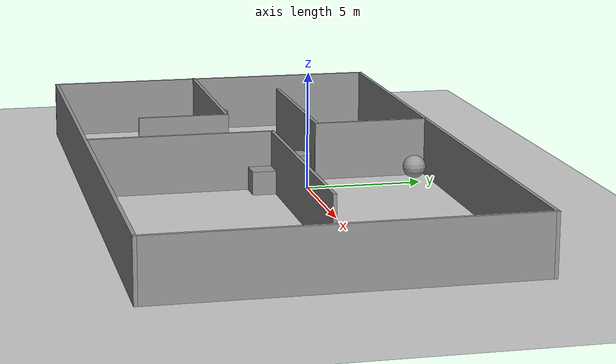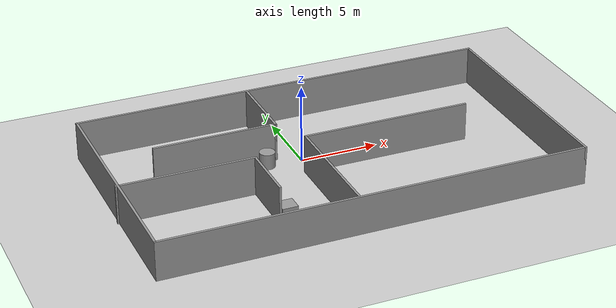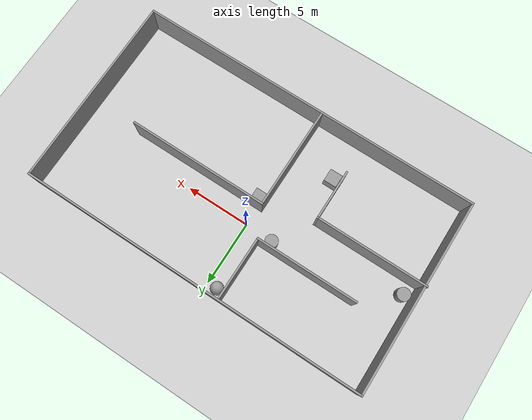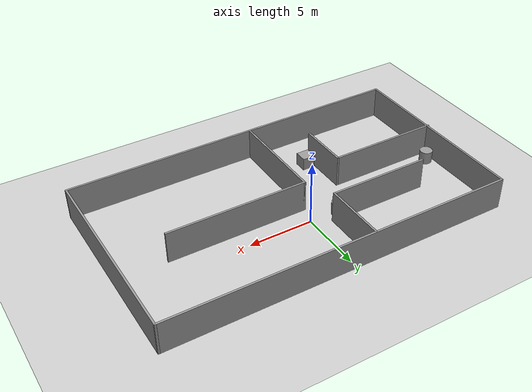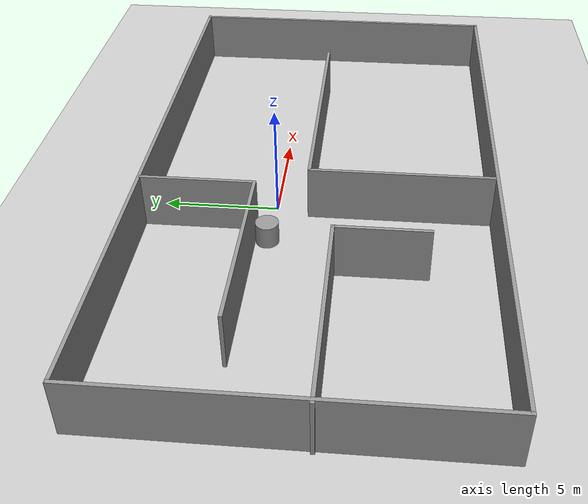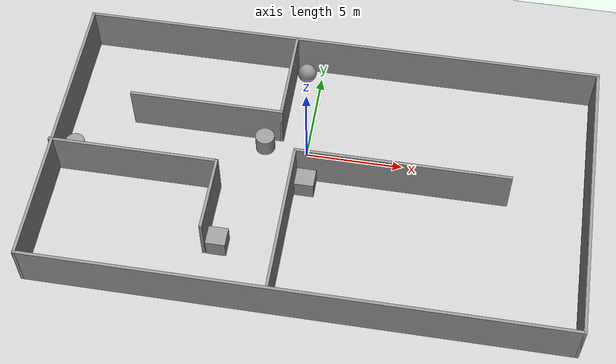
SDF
<sdf version="1.7">
 <world name="default">
  <light name="sun" type="directional">
   <pose>0 0 10 0 -0 0</pose>
   <diffuse>0.8 0.8 0.8 1</diffuse>
   <specular>0.2 0.2 0.2 1</specular>
   <attenuation>
    <range>1000</range>
    <constant>0.9</constant>
    <linear>0.01</linear>
    <quadratic>0.001</quadratic>
   </attenuation>
   <direction>-0.5 0.1 -0.9</direction>
   <spot><inner_angle>0</inner_angle><outer_angle>0</outer_angle><falloff>0</falloff></spot>
  </light>
  <model name="ground_plane">
   <static>1</static>
   <link name="link">
    <collision name="collision">
     <geometry><plane><normal>0 0 1</normal><size>100 100</size></plane></geometry>
     <surface>
      <contact><collide_bitmask>65535</collide_bitmask></contact>
      <friction><ode><mu>100</mu><mu2>50</mu2></ode></friction>
     </surface>
    </collision>
    <visual name="visual">
     <cast_shadows>0</cast_shadows>
     <geometry><plane><normal>0 0 1</normal><size>100 100</size></plane></geometry>
     <material>
      <script><uri>file://media/materials/scripts/gazebo.material</uri><name>Gazebo/Grey</name></script>
     </material>
    </visual>
   </link>
  </model>
  <gravity>0 0 -9.8</gravity>
  <magnetic_field>6e-06 2.3e-05 -4.2e-05</magnetic_field>
  <atmosphere type="adiabatic"/>
  <physics type="ode">
   <max_step_size>0.001</max_step_size>
   <real_time_factor>1</real_time_factor>
   <real_time_update_rate>1000</real_time_update_rate>
  </physics>
  <scene><ambient>0.4 0.4 0.4 1</ambient><background>0.7 0.7 0.7 1</background><shadows>1</shadows></scene>
  <audio><device>default</device></audio>
  <spherical_coordinates>
   <surface_model>EARTH_WGS84</surface_model>
   <latitude_deg>0</latitude_deg>
   <longitude_deg>0</longitude_deg>
   <elevation>0</elevation>
   <heading_deg>0</heading_deg>
  </spherical_coordinates>
  <model name="room">
   <pose>1.99157 -1.89011 0 0 -0 0</pose>
   <link name="Wall_0">
    <collision name="Wall_0_Collision">
     <geometry><box><size>15.25 0.15 2.5</size></box></geometry>
     <pose>0 0 1.25 0 -0 0</pose>
    </collision>
    <visual name="Wall_0_Visual">
     <pose>0 0 1.25 0 -0 0</pose>
     <geometry><box><size>15.25 0.15 2.5</size></box></geometry>
     <material>
      <script><uri>file://media/materials/scripts/gazebo.material</uri><name>Gazebo/Grey</name></script>
      <ambient>1 1 1 1</ambient>
     </material>
     <meta><layer>0</layer></meta>
    </visual>
    <pose>-14.6011 -0 0 0 -0 -1.5708</pose>
   </link>
   <link name="Wall_1">
    <collision name="Wall_1_Collision">
     <geometry><box><size>27.25 0.15 2.5</size></box></geometry>
     <pose>0 0 1.25 0 -0 0</pose>
    </collision>
    <visual name="Wall_1_Visual">
     <pose>0 0 1.25 0 -0 0</pose>
     <geometry><box><size>27.25 0.15 2.5</size></box></geometry>
     <material>
      <script><uri>file://media/materials/scripts/gazebo.material</uri><name>Gazebo/Grey</name></script>
      <ambient>1 1 1 1</ambient>
     </material>
     <meta><layer>0</layer></meta>
    </visual>
    <pose>-1.05106 -7.55 0 0 -0 0</pose>
   </link>
   <link name="Wall_11">
    <collision name="Wall_11_Collision">
     <geometry><box><size>8 0.15 2.5</size></box></geometry>
     <pose>0 0 1.25 0 -0 0</pose>
    </collision>
    <visual name="Wall_11_Visual">
     <pose>0 0 1.25 0 -0 0</pose>
     <geometry><box><size>8 0.15 2.5</size></box></geometry>
     <material>
      <script><uri>file://media/materials/scripts/gazebo.material</uri><name>Gazebo/Grey</name></script>
      <ambient>1 1 1 1</ambient>
     </material>
     <meta><layer>0</layer></meta>
    </visual>
    <pose>-2.34899 -3.5057 0 0 -0 1.5708</pose>
   </link>
   <link name="Wall_12">
    <collision name="Wall_12_Collision">
     <geometry><box><size>11 0.15 2.5</size></box></geometry>
     <pose>0 0 1.25 0 -0 0</pose>
    </collision>
    <visual name="Wall_12_Visual">
     <pose>0 0 1.25 0 -0 0</pose>
     <geometry><box><size>11 0.15 2.5</size></box></geometry>
     <material>
      <script><uri>file://media/materials/scripts/gazebo.material</uri><name>Gazebo/Grey</name></script>
      <ambient>1 1 1 1</ambient>
     </material>
     <meta><layer>0</layer></meta>
    </visual>
    <pose>3.07601 0.4193 0 0 -0 0</pose>
   </link>
   <link name="Wall_2">
    <collision name="Wall_2_Collision">
     <geometry><box><size>15.25 0.15 2.5</size></box></geometry>
     <pose>0 0 1.25 0 -0 0</pose>
    </collision>
    <visual name="Wall_2_Visual">
     <pose>0 0 1.25 0 -0 0</pose>
     <geometry><box><size>15.25 0.15 2.5</size></box></geometry>
     <material>
      <script><uri>file://media/materials/scripts/gazebo.material</uri><name>Gazebo/Grey</name></script>
      <ambient>1 1 1 1</ambient>
     </material>
     <meta><layer>0</layer></meta>
    </visual>
    <pose>12.4989 -0 0 0 -0 1.5708</pose>
   </link>
   <link name="Wall_3">
    <collision name="Wall_3_Collision">
     <geometry><box><size>27.25 0.15 2.5</size></box></geometry>
     <pose>0 0 1.25 0 -0 0</pose>
    </collision>
    <visual name="Wall_3_Visual">
     <pose>0 0 1.25 0 -0 0</pose>
     <geometry><box><size>27.25 0.15 2.5</size></box></geometry>
     <material>
      <script><uri>file://media/materials/scripts/gazebo.material</uri><name>Gazebo/Grey</name></script>
      <ambient>1 1 1 1</ambient>
     </material>
     <meta><layer>0</layer></meta>
    </visual>
    <pose>-1.05106 7.55 0 0 -0 3.14159</pose>
   </link>
   <link name="Wall_5">
    <collision name="Wall_5_Collision">
     <geometry><box><size>8 0.15 2.5</size></box></geometry>
     <pose>0 0 1.25 0 -0 0</pose>
    </collision>
    <visual name="Wall_5_Visual">
     <pose>0 0 1.25 0 -0 0</pose>
     <geometry><box><size>8 0.15 2.5</size></box></geometry>
     <material>
      <script><uri>file://media/materials/scripts/gazebo.material</uri><name>Gazebo/Grey</name></script>
      <ambient>1 1 1 1</ambient>
     </material>
     <meta><layer>0</layer></meta>
    </visual>
    <pose>-7.35891 2.62777 0 0 -0 0</pose>
   </link>
   <link name="Wall_6">
    <collision name="Wall_6_Collision">
     <geometry><box><size>5 0.15 2.5</size></box></geometry>
     <pose>0 0 1.25 0 -0 0</pose>
    </collision>
    <visual name="Wall_6_Visual">
     <pose>0 0 1.25 0 -0 0</pose>
     <geometry><box><size>5 0.15 2.5</size></box></geometry>
     <material>
      <script><uri>file://media/materials/scripts/gazebo.material</uri><name>Gazebo/Grey</name></script>
      <ambient>1 1 1 1</ambient>
     </material>
     <meta><layer>0</layer></meta>
    </visual>
    <pose>-3.43391 5.05277 0 0 -0 1.5708</pose>
   </link>
   <link name="Wall_8">
    <collision name="Wall_8_Collision">
     <geometry><box><size>8.75 0.15 2.5</size></box></geometry>
     <pose>0 0 1.25 0 -0 0</pose>
    </collision>
    <visual name="Wall_8_Visual">
     <pose>0 0 1.25 0 -0 0</pose>
     <geometry><box><size>8.75 0.15 2.5</size></box></geometry>
     <material>
      <script><uri>file://media/materials/scripts/gazebo.material</uri><name>Gazebo/Grey</name></script>
      <ambient>1 1 1 1</ambient>
     </material>
     <meta><layer>0</layer></meta>
    </visual>
    <pose>-10.4081 -0.849893 0 0 -0 0</pose>
   </link>
   <link name="Wall_9">
    <collision name="Wall_9_Collision">
     <geometry><box><size>4 0.15 2.5</size></box></geometry>
     <pose>0 0 1.25 0 -0 0</pose>
    </collision>
    <visual name="Wall_9_Visual">
     <pose>0 0 1.25 0 -0 0</pose>
     <geometry><box><size>4 0.15 2.5</size></box></geometry>
     <material>
      <script><uri>file://media/materials/scripts/gazebo.material</uri><name>Gazebo/Grey</name></script>
      <ambient>1 1 1 1</ambient>
     </material>
     <meta><layer>0</layer></meta>
    </visual>
    <pose>-6.10807 -2.77489 0 0 -0 -1.5708</pose>
   </link>
   <static>1</static>
  </model>
  <model name="unit_box">
   <pose>0.243442 -2.04581 0.499995 -1e-05 -0 0</pose>
   <link name="link">
    <inertial>
     <mass>1</mass>
     <inertia>
      <ixx>0.166667</ixx>
      <ixy>0</ixy>
      <ixz>0</ixz>
      <iyy>0.166667</iyy>
      <iyz>0</iyz>
      <izz>0.166667</izz>
     </inertia>
    </inertial>
    <collision name="collision"><geometry><box><size>1 1 1</size></box></geometry></collision>
    <visual name="visual">
     <geometry><box><size>1 1 1</size></box></geometry>
     <material>
      <script><name>Gazebo/Grey</name><uri>file://media/materials/scripts/gazebo.material</uri></script>
     </material>
    </visual>
   </link>
  </model>
  <model name="unit_sphere">
   <pose>-0.809972 4.9898 0.5 0 -0 0</pose>
   <link name="link">
    <inertial>
     <mass>1</mass>
     <inertia><ixx>0.1</ixx><ixy>0</ixy><ixz>0</ixz><iyy>0.1</iyy><iyz>0</iyz><izz>0.1</izz></inertia>
    </inertial>
    <collision name="collision"><geometry><sphere><radius>0.5</radius></sphere></geometry></collision>
    <visual name="visual">
     <geometry><sphere><radius>0.5</radius></sphere></geometry>
     <material>
      <script><name>Gazebo/Grey</name><uri>file://media/materials/scripts/gazebo.material</uri></script>
     </material>
    </visual>
   </link>
  </model>
  <model name="unit_cylinder">
   <pose>-2.23847 0.156464 0.499997 3e-06 4e-06 -0</pose>
   <link name="link">
    <inertial>
     <mass>1</mass>
     <inertia><ixx>0.145833</ixx><ixy>0</ixy><ixz>0</ixz><iyy>0.145833</iyy><iyz>0</iyz><izz>0.125</izz></inertia>
    </inertial>
    <collision name="collision">
     <geometry><cylinder><radius>0.5</radius><length>1</length></cylinder></geometry>
    </collision>
    <visual name="visual">
     <geometry><cylinder><radius>0.5</radius><length>1</length></cylinder></geometry>
     <material>
      <script><name>Gazebo/Grey</name><uri>file://media/materials/scripts/gazebo.material</uri></script>
     </material>
    </visual>
   </link>
  </model>
  <model name="unit_box_0">
   <pose>-3.49556 -6.17094 0.499995 -1e-05 -0 0</pose>
   <link name="link">
    <inertial>
     <mass>1</mass>
     <inertia>
      <ixx>0.166667</ixx>
      <ixy>0</ixy>
      <ixz>0</ixz>
      <iyy>0.166667</iyy>
      <iyz>0</iyz>
      <izz>0.166667</izz>
     </inertia>
    </inertial>
    <collision name="collision"><geometry><box><size>1 1 1</size></box></geometry></collision>
    <visual name="visual">
     <geometry><box><size>1 1 1</size></box></geometry>
     <material>
      <script><name>Gazebo/Grey</name><uri>file://media/materials/scripts/gazebo.material</uri></script>
     </material>
    </visual>
   </link>
  </model>
  <model name="unit_cylinder_0">
   <pose>-11.9128 -1.7247 0.499997 3e-06 4e-06 -0</pose>
   <link name="link">
    <inertial>
     <mass>1</mass>
     <inertia><ixx>0.145833</ixx><ixy>0</ixy><ixz>0</ixz><iyy>0.145833</iyy><iyz>0</iyz><izz>0.125</izz></inertia>
    </inertial>
    <collision name="collision">
     <geometry><cylinder><radius>0.5</radius><length>1</length></cylinder></geometry>
    </collision>
    <visual name="visual">
     <geometry><cylinder><radius>0.5</radius><length>1</length></cylinder></geometry>
     <material>
      <script><name>Gazebo/Grey</name><uri>file://media/materials/scripts/gazebo.material</uri></script>
     </material>
    </visual>
   </link>
  </model>
 </world>
</sdf>
